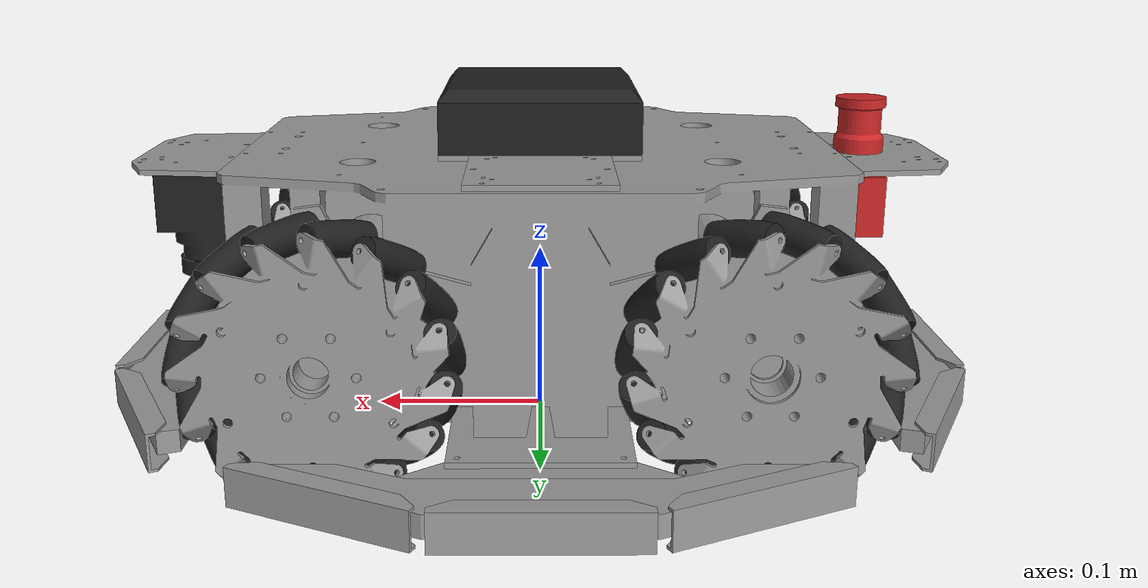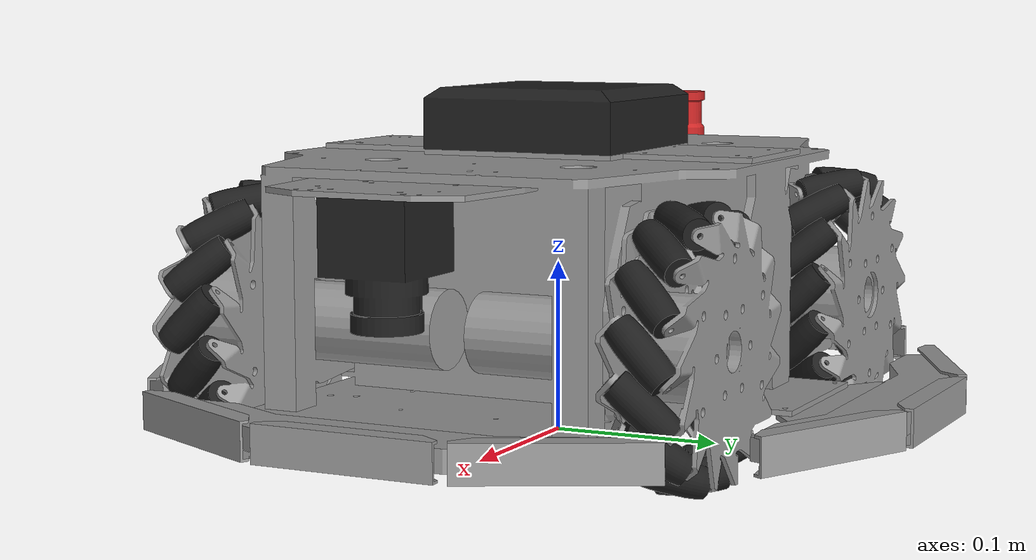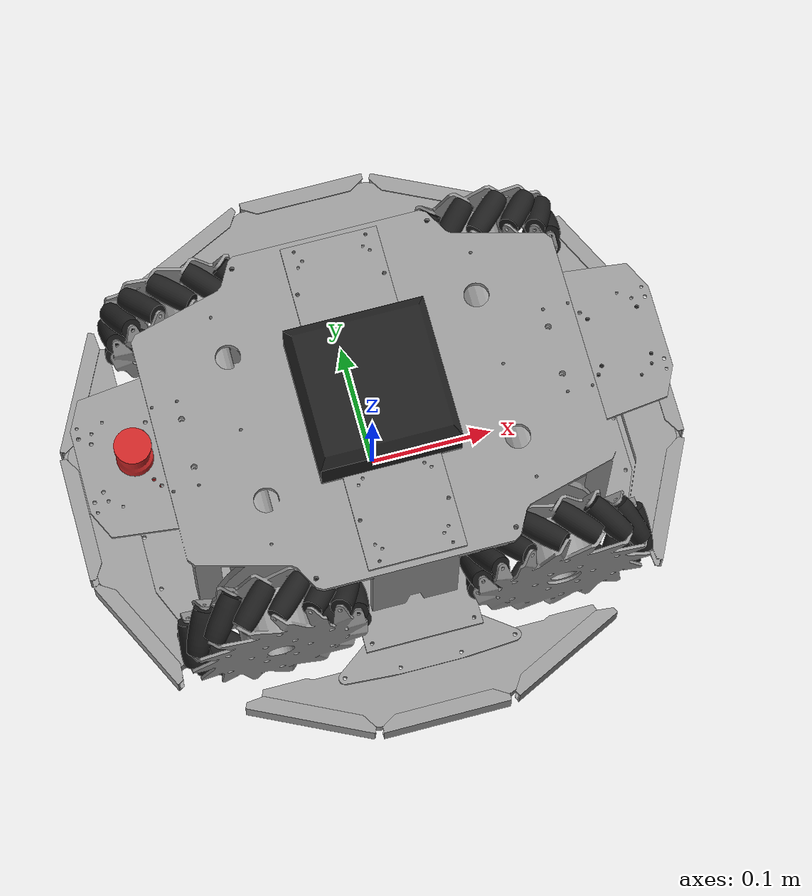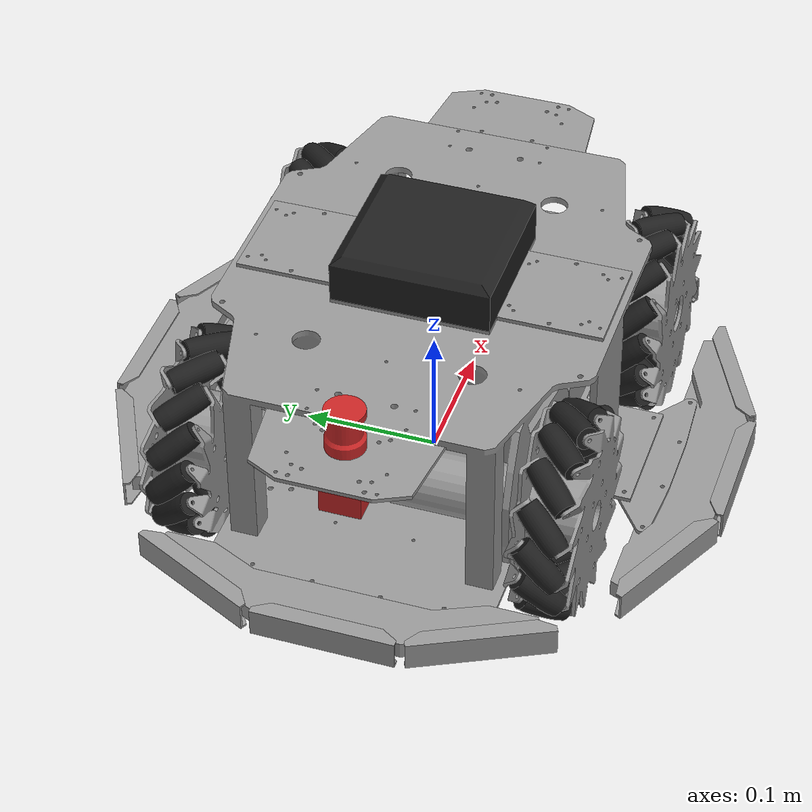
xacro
<?xml version="1.0"?>
<robot name="vmecanumrover" xmlns:xacro="http://ros.org/wiki/xacro">
  <link name="base_link"/>

  <xacro:macro name="cylinder_inertial" params="mass radius length">
	<mass value="${mass}"/>
	<inertia ixx="${((radius*radius)/4 + (length*length)/12)*mass}" ixy="0" ixz="0"
			 iyy="${((radius*radius)/4 + (length*length)/12)*mass}" iyz="0"
			 izz="${(mass*radius*radius)/2}" />
  </xacro:macro>

  <xacro:macro name="box_inertial" params="mass height width depth">
	<mass value="${mass}"/>
	<inertia ixx="${(mass*(width*width+depth*depth))/12}" ixy="0" ixz="0"
			 iyy="${(mass*(height*height+depth*depth))/12}" iyz="0"
			 izz="${(mass*(height*height+width*width))/12}" />
  </xacro:macro>

  <xacro:macro name="sus" params="prefix">
    <joint name="${prefix}_sus_joint" type="prismatic">
      <parent link="${prefix}_base_link"/>
      <child  link="${prefix}_sus_link"/>
      <limit lower="-0.02" upper="0.02" effort="100" velocity="1.0" />
      <axis xyz="0 0 1"/>
      <origin xyz="0 0 0" rpy="0 0 0"/>
      <dynamics damping="0.01"/>
    </joint>
    <transmission name="${prefix}_sus_trans">
      <type>transmission_interface/SimpleTransmission</type>
      <joint name="${prefix}_sus_joint">
          <hardwareInterface>hardware_interface/EffortJointInterface</hardwareInterface>
      </joint>
      <actuator name="${prefix}_sus_motor">
        <hardwareInterface>hardware_interface/EffortJointInterface</hardwareInterface>
        <mechanismReduction>1</mechanismReduction>
      </actuator>
    </transmission>
    <gazebo reference="${prefix}_sus_joint">
      <kp>50000</kp>
      <kd>500</kd>
    </gazebo>
    <link name="${prefix}_sus_link">
      <inertial>
        <mass value="0.010"/>
        <inertia ixx="0.00001" ixy="0.0" ixz="0.0" iyy="0.00001" iyz="0.0" izz="0.00001"/>
      </inertial>
    </link>

  </xacro:macro>

  <xacro:macro name="barrel" params="prefix num dir rot">
    <joint name="${prefix}_barrel${num}_joint" type="continuous">
      <parent link="${prefix}_motor_shaft_link"/>
      <child link="${prefix}_barrel${num}_link"/>
      <origin rpy="${pi/4*rot} 0 ${radians(dir)}" xyz="${0.0666389*cos(radians(dir))} ${0.0666389*sin(radians(dir))} 0"/>
      <axis xyz="0 0 1"/>
      <dynamics damping="0.001"  friction="0.0"/>
    </joint>
    <link name="${prefix}_barrel${num}_link">
      <visual>
        <geometry>
          <mesh filename="package://mecanumrover_samples/meshes/dae/mecanum_barrel.dae" />
        </geometry>
        <material name="black"/>
      </visual>
      <collision>
        <geometry>
          <cylinder radius="0.00956" length="0.0381" />
        </geometry>
      </collision>
      <inertial>
        <xacro:cylinder_inertial mass="0.01225" radius="0.00956" length="0.0381" />
      </inertial>

    </link>
    <gazebo reference="${prefix}_barrel${num}_link">
      <material>Gazebo/Black</material>
      <mu1 value="2.5" />
      <mu2 value="2.5" />
      <kp value="50000" />
      <kd value="100" />
    </gazebo>
  </xacro:macro>

  <xacro:macro name="barrels" params="prefix rot ">
    <xacro:barrel prefix="${prefix}"  num="0" dir="0" rot="${rot}"/>
    <xacro:barrel prefix="${prefix}"  num="1" dir="24" rot="${rot}"/>
    <xacro:barrel prefix="${prefix}"  num="2" dir="48" rot="${rot}"/>
    <xacro:barrel prefix="${prefix}"  num="3" dir="72" rot="${rot}"/>
    <xacro:barrel prefix="${prefix}"  num="4" dir="96" rot="${rot}"/>
    <xacro:barrel prefix="${prefix}"  num="5" dir="120" rot="${rot}"/>
    <xacro:barrel prefix="${prefix}"  num="6" dir="144" rot="${rot}"/>
    <xacro:barrel prefix="${prefix}"  num="7" dir="168" rot="${rot}"/>
    <xacro:barrel prefix="${prefix}"  num="8" dir="192" rot="${rot}"/>
    <xacro:barrel prefix="${prefix}"  num="9" dir="216" rot="${rot}"/>
    <xacro:barrel prefix="${prefix}"  num="10" dir="240" rot="${rot}"/>
    <xacro:barrel prefix="${prefix}"  num="11" dir="264" rot="${rot}"/>
    <xacro:barrel prefix="${prefix}"  num="12" dir="288" rot="${rot}"/>
    <xacro:barrel prefix="${prefix}"  num="13" dir="312" rot="${rot}"/>
    <xacro:barrel prefix="${prefix}"  num="14" dir="336" rot="${rot}"/>
  </xacro:macro>

  <xacro:macro name="motor" params="prefix parent mesh">
    <joint name="${prefix}_joint" type="fixed">
      <parent link="${parent}"/>
      <child  link="${prefix}_body_link"/>
    </joint>
    <link name="${prefix}_body_link">
      <visual>
        <origin rpy="0 ${radians(90)} 0" xyz="-0.06075 0 0"/>
        <geometry>
          <cylinder radius="0.02225" length="0.1215" />
        </geometry>
        <material name="gray"/>
      </visual>
      <collision>
        <origin rpy="0 ${radians(90)} 0" xyz="-0.06075 0 0"/>
        <geometry>
          <cylinder radius="0.02225" length="0.1215" />
        </geometry>
      </collision>
      <inertial>
        <xacro:cylinder_inertial mass="0.880" radius="0.02225" length="0.1215" />
      </inertial>

    </link>
    <gazebo reference="${prefix}_body_link">
      <material>Gazebo/Gray</material>
    </gazebo>

    <joint name="${prefix}_shaft_joint" type="continuous">
      <parent link="${prefix}_body_link"/>
      <child  link="${prefix}_shaft_link"/>
      <origin rpy="0 ${radians(90)} 0" xyz="0 0 0"/>
      <axis xyz="0 0 -1"/>
      <dynamics damping="0.01" friction="0.0"/>
    </joint>
    <transmission name="${prefix}_shaft_trans">
      <type>transmission_interface/SimpleTransmission</type>
      <joint name="${prefix}_shaft_joint">
        <hardwareInterface>hardware_interface/EffortJointInterface</hardwareInterface>
      </joint>
      <actuator name="${prefix}_shaft_motor">
        <hardwareInterface>hardware_interface/EffortJointInterface</hardwareInterface>
        <mechanicalReduction>1</mechanicalReduction>
      </actuator>
    </transmission>

    <link name="${prefix}_shaft_link">
      <visual>
        <geometry>
          <mesh filename="package://mecanumrover_samples/meshes/dae/${mesh}.dae" />
        </geometry>
        <material name="gray"/>
      </visual>
      <collision>
        <origin rpy="0 0 0" xyz="0 0 0"/>
        <geometry>
          <cylinder radius="0.070" length="0.04572" />
        </geometry>
      </collision>
      <inertial>
        <xacro:cylinder_inertial mass="0.43525" radius="0.048" length="0.04572" />
      </inertial>

    </link>
    <gazebo reference="${prefix}_shaft_link">
      <material>Gazebo/White</material>
      <mu1 value="0.0" />
      <mu2 value="0.0" />
    </gazebo>
  </xacro:macro>

  <xacro:macro name="omni_wheel_set_l" params="prefix parent">

    <joint name="${prefix}_base_joint" type="fixed">
      <parent link="${parent}"/>
      <child link="${prefix}_base_link"/>
      <origin rpy="0 0 0" xyz="0 0 0"/>
    </joint>
    <link name="${prefix}_base_link" >
      <inertial>
        <mass value="0.010"/>
        <inertia ixx="0.0001" ixy="0" ixz="0" iyy="0.0001" iyz="0" izz="0.0001"/>
      </inertial>
    </link>

    <xacro:sus prefix="${prefix}"/>
    <xacro:motor prefix="${prefix}_motor" parent="${prefix}_sus_link" mesh="mecanum_wheel_rev"/>
    <xacro:barrels prefix="${prefix}" rot="-1"/>

  </xacro:macro>

  <xacro:macro name="omni_wheel_set_r" params="prefix parent">

    <joint name="${prefix}_base_joint" type="fixed">
      <parent link="${parent}"/>
      <child link="${prefix}_base_link"/>
      <origin rpy="0 0 0" xyz="0 0 0"/>
    </joint>
    <link name="${prefix}_base_link" >
      <inertial>
        <mass value="0.010"/>
        <inertia ixx="0.0001" ixy="0" ixz="0" iyy="0.0001" iyz="0" izz="0.0001"/>
      </inertial>
    </link>

    <xacro:sus prefix="${prefix}"/>
    <xacro:motor prefix="${prefix}_motor" parent="${prefix}_sus_link" mesh="mecanum_wheel"/>
    <xacro:barrels prefix="${prefix}" rot="1"/>

  </xacro:macro>

  <joint name="body_joint" type="fixed">
    <parent link="base_link"/>
    <child  link="body_link"/>
    <origin xyz="0 0 0.0" rpy="0 0 0"/>
  </joint>
  <link name="body_link">
    <visual>
      <geometry>
          <mesh filename="package://mecanumrover_samples/meshes/dae/mecanum_body.dae" />
      </geometry>
      <material name="gray"/>
    </visual>
    <collision>
      <geometry>
          <mesh filename="package://mecanumrover_samples/meshes/stl/mecanum_body.stl" />
      </geometry>
    </collision>
    <inertial>
        <xacro:box_inertial mass="14.004" height="0.135" width="0.28" depth="0.34" />
    </inertial>

  </link>
  <gazebo reference="body_link">
    <material>Gazebo/White</material>
  </gazebo>

  <joint name="wheel0_attach_joint" type="fixed">
    <parent link="base_link"/>
    <child  link="wheel0_attach_link"/>
    <origin xyz="0.115 0.132 0.075" rpy="0 0 ${radians(90)}"/>
  </joint>
  <link name="wheel0_attach_link" />
  <xacro:omni_wheel_set_l prefix="wheel0" parent="wheel0_attach_link" />

  <joint name="wheel1_attach_joint" type="fixed">
    <parent link="base_link"/>
    <child  link="wheel1_attach_link"/>
    <origin xyz="0.115 -0.132 0.075" rpy="0 0 ${radians(-90)}"/>
  </joint>
  <link name="wheel1_attach_link" />
  <xacro:omni_wheel_set_r prefix="wheel1" parent="wheel1_attach_link" />

  <joint name="wheel2_attach_joint" type="fixed">
    <parent link="base_link"/>
    <child  link="wheel2_attach_link"/>
    <origin xyz="-0.115 0.132 0.075" rpy="0 0 ${radians(90)}"/>
  </joint>
  <link name="wheel2_attach_link" />
  <xacro:omni_wheel_set_r prefix="wheel2" parent="wheel2_attach_link" />

  <joint name="wheel3_attach_joint" type="fixed">
    <parent link="base_link"/>
    <child  link="wheel3_attach_link"/>
    <origin xyz="-0.115 -0.132 0.075" rpy="0 0 ${radians(-90)}"/>
  </joint>
  <link name="wheel3_attach_link" />
  <xacro:omni_wheel_set_l prefix="wheel3" parent="wheel3_attach_link" />

  <!-- option parts -->
  <xacro:macro name="optionattachboard" params="prefix xyz z_dir">

  <joint name="board_${prefix}_joint" type="fixed">
    <parent link="body_link"/>
    <child  link="board_${prefix}_link"/>
    <origin xyz="${xyz}" rpy="0 0 ${radians(z_dir)}"/>
  </joint>
  <link name="board_${prefix}_link">
    <visual>
      <geometry>
          <mesh filename="package://mecanumrover_samples/meshes/dae/mecanum_optionattachboard.dae" />
      </geometry>
      <material name="gray"/>
    </visual>
    <collision>
      <geometry>
          <mesh filename="package://mecanumrover_samples/meshes/stl/mecanum_optionattachboard.stl" />
      </geometry>
    </collision>
    <inertial>
        <xacro:box_inertial mass="0.0780" height="0.003" width="0.12" depth="0.0885" />
    </inertial>

  </link>
  <gazebo reference="board_${prefix}_link">
    <material>Gazebo/White</material>
  </gazebo>
  </xacro:macro>

  <xacro:macro name="bumper" params="prefix num xyz z_dir">

  <joint name="bumper_${prefix}_${num}_joint" type="prismatic">
    <parent link="bumper_baseboard_${prefix}_link"/>
    <child  link="bumper_${prefix}_${num}_link"/>
    <origin xyz="${xyz}" rpy="0 0 ${radians(z_dir)}"/>

    <limit lower="0.0" upper="0.005" effort="1" velocity="1.0" />
    <axis xyz="0 1 0"/>
    <origin xyz="0 0 0" rpy="0 0 0"/>
    <dynamics damping="0.01"/>

  </joint>
  <transmission name="bumper_${prefix}_${num}_trans">
    <type>transmission_interface/SimpleTransmission</type>
    <joint name="bumper_${prefix}_${num}_joint">
        <hardwareInterface>hardware_interface/EffortJointInterface</hardwareInterface>
    </joint>
    <actuator name="bumper_${prefix}_${num}_motor">
      <hardwareInterface>hardware_interface/EffortJointInterface</hardwareInterface>
      <mechanismReduction>1</mechanismReduction>
    </actuator>
  </transmission>

  <link name="bumper_${prefix}_${num}_link">
    <visual>
      <geometry>
          <mesh filename="package://mecanumrover_samples/meshes/dae/mecanum_bumper.dae" />
      </geometry>
      <material name="gray"/>
    </visual>
    <collision>
      <geometry>
          <mesh filename="package://mecanumrover_samples/meshes/stl/mecanum_bumper.stl" />
      </geometry>
    </collision>
    <inertial>
        <xacro:box_inertial mass="0.016" height="0.02096" width="0.104" depth="0.01251" />
    </inertial>

  </link>
  <gazebo reference="bumper_${prefix}_${num}_link">
    <material>Gazebo/White</material>
    <kp value="10000" />
    <kd value="100" />
  </gazebo>
  </xacro:macro>

  <xacro:macro name="bumperbaseboard" params="prefix parent xyz z_dir">

  <joint name="bumper_baseboard_${prefix}_joint" type="fixed">
    <parent link="${parent}"/>
    <child  link="bumper_baseboard_${prefix}_link"/>
    <origin xyz="${xyz}" rpy="0 0 ${radians(z_dir)}"/>
  </joint>
  <link name="bumper_baseboard_${prefix}_link">
    <visual>
      <geometry>
          <mesh filename="package://mecanumrover_samples/meshes/dae/mecanum_bumper_plate.dae" />
      </geometry>
      <material name="gray"/>
    </visual>
    <collision>
      <geometry>
          <mesh filename="package://mecanumrover_samples/meshes/stl/mecanum_bumper_plate.stl" />
      </geometry>
    </collision>
    <inertial>
        <xacro:box_inertial mass="0.195" height="0.0125" width="0.053" depth="0.26" />
    </inertial>

  </link>
  <gazebo reference="bumper_baseboard_${prefix}_link">
    <material>Gazebo/White</material>
  </gazebo>

      <xacro:bumper prefix="${prefix}" num="0" xyz="0.10521 -0.024711 -0.00325" z_dir="26" />
      <xacro:bumper prefix="${prefix}" num="1" xyz="0 -0.049 -0.00325" z_dir="0" />
      <xacro:bumper prefix="${prefix}" num="2" xyz="-0.10521 -0.024711 -0.00325" z_dir="-26" />

  </xacro:macro>

  <xacro:macro name="sidebumperattachboard" params="prefix xyz z_dir">

  <joint name="board_${prefix}_joint" type="fixed">
    <parent link="body_link"/>
    <child  link="bumper_board_${prefix}_link"/>
    <origin xyz="${xyz}" rpy="0 0 ${radians(z_dir)}"/>
  </joint>
  <link name="bumper_board_${prefix}_link">
    <visual>
      <geometry>
          <mesh filename="package://mecanumrover_samples/meshes/dae/mecanum_bumper_sidelink.dae" />
      </geometry>
      <material name="gray"/>
    </visual>
    <collision>
      <geometry>
          <mesh filename="package://mecanumrover_samples/meshes/stl/mecanum_bumper_sidelink.stl" />
      </geometry>
    </collision>
    <inertial>
        <xacro:box_inertial mass="0.038" height="0.003" width="0.03371" depth="0.3262" />
    </inertial>

  </link>
  <gazebo reference="bumper_board_${prefix}_link">
    <material>Gazebo/White</material>
  </gazebo>

  <xacro:bumperbaseboard prefix="${prefix}" parent="bumper_board_${prefix}_link" xyz="0.0 -0.024 0.005" z_dir="0"/>

  </xacro:macro>

  <!-- Bumper  -->
  <!-- right -->
  <xacro:sidebumperattachboard prefix="right" xyz="0.0 0.157 0.0285" z_dir="180"/>
  <!-- left -->
  <xacro:sidebumperattachboard prefix="left" xyz="0.0 -0.157 0.0285" z_dir="0"/>

  <!-- front -->
  <xacro:bumperbaseboard prefix="front" parent="body_link" xyz="0.196 0 0.0365" z_dir="90"/>
  <!-- back -->
  <xacro:bumperbaseboard prefix="back" parent="body_link" xyz="-0.196 0 0.0365" z_dir="-90"/>

  <!-- base attachment(LiDAR,emergency button,wyreless charge) board(front) -->
  <!--  upper side  -->
  <!--  lower side  -->
  <xacro:optionattachboard prefix="front" xyz="0.157 0 0.1585" z_dir="0" />

  <!-- base attachment(LiDAR,emergency button,wyreless charge) board(back) -->
  <!--  upper side  -->
  <!--  lower side  -->
  <xacro:optionattachboard prefix="back" xyz="-0.157 0 0.1585" z_dir="180" />

  <!-- LiDAR  -->
  <joint name="lidar_joint" type="fixed">
    <parent link="board_front_link"/>
    <child  link="lidar_link"/>
  <!-- attach upper side -->
  <!-- attach lower side -->
    <origin xyz="0.042 0 -0.0570" rpy="${radians(180)} 0 0"/>
  </joint>
  <link name="lidar_link">
    <visual>
      <geometry>
          <mesh filename="package://mecanumrover_samples/meshes/dae/mecanum_lidar.dae" />
      </geometry>
      <material name="black"/>
    </visual>
    <collision>
      <geometry>
          <mesh filename="package://mecanumrover_samples/meshes/stl/mecanum_lidar.stl" />
      </geometry>
    </collision>
    <inertial>
        <xacro:box_inertial mass="0.160" height="0.07" width="0.05" depth="0.05" />
    </inertial>

  </link>
  <gazebo reference="lidar_link">
    <material>Gazebo/Black</material>
    <sensor type="ray" name="lidar_sensor">
      <pose>0 0 0 0 0 0</pose>
      <visualize>true</visualize>
      <update_rate>40</update_rate>
      <ray>
        <scan>
          <horizontal>
            <samples>1000</samples>
            <resolution>1</resolution>
            <min_angle>-1.57</min_angle>
            <max_angle>1.57</max_angle>
          </horizontal>
        </scan>
        <range>
          <min>0.06</min>
          <max>4.0</max>
        <resolution>0.001</resolution>
        </range>
        <noise>
          <type>gaussian</type>
          <mean>0.0</mean>
          <stddev>0.03</stddev>
        </noise>
      </ray>
      <plugin name="gazebo_ros_lrf_controller" filename="libgazebo_ros_laser.so">
        <topicName>/scan</topicName>
        <frameName>lidar_link</frameName>
      </plugin>
    </sensor>
  </gazebo>

  <!-- emergency button  -->
  <joint name="button_joint" type="fixed">
    <parent link="board_back_link"/>
    <child  link="button_link"/>
    <origin xyz="0.032 0 -0.0072" rpy="0 0 0"/>
  </joint>
  <link name="button_link">
    <visual>
      <geometry>
          <mesh filename="package://mecanumrover_samples/meshes/dae/mecanum_button.dae" />
      </geometry>
      <material name="red"/>
    </visual>
    <collision>
      <geometry>
          <mesh filename="package://mecanumrover_samples/meshes/stl/mecanum_button.stl" />
      </geometry>
    </collision>
    <inertial>
        <xacro:box_inertial mass="0.48" height="0.3026" width="0.03" depth="0.0294" />
    </inertial>

  </link>
  <gazebo reference="button_link">
    <material>Gazebo/Red</material>
  </gazebo>

  <!-- Wyreless charger  -->
  <!-- attachiment  -->

  <!-- wyreless charger  -->

  <!-- NUC PC  -->
  <!-- option attach board  -->
  <joint name="board_center_joint" type="fixed">
    <parent link="body_link"/>
    <child  link="board_center_link"/>
    <origin xyz="0.0 0 0.1665" rpy="0 0 0"/>
  </joint>
  <link name="board_center_link">
    <visual>
      <geometry>
          <mesh filename="package://mecanumrover_samples/meshes/dae/mecanum_nuc_board.dae" />
      </geometry>
      <material name="gray"/>
    </visual>
    <collision>
      <geometry>
          <mesh filename="package://mecanumrover_samples/meshes/stl/mecanum_nuc_board.stl" />
      </geometry>
    </collision>
    <inertial>
        <xacro:box_inertial mass="0.16" height="0.003" width="0.27" depth="0.095" />
    </inertial>

  </link>
  <gazebo reference="board_center_link">
    <material>Gazebo/White</material>
  </gazebo>

  <!-- NUC  -->
  <joint name="nuc_joint" type="fixed">
    <parent link="board_center_link"/>
    <child  link="nuc_link"/>
    <origin xyz="0.0 0 0.019" rpy="0 0 0"/>
  </joint>
  <link name="nuc_link">
    <visual>
      <geometry>
          <mesh filename="package://mecanumrover_samples/meshes/dae/mecanum_nuc.dae" />
      </geometry>
      <material name="black"/>
    </visual>
    <collision>
      <geometry>
          <mesh filename="package://mecanumrover_samples/meshes/stl/mecanum_nuc.stl" />
      </geometry>
    </collision>
    <inertial>
        <xacro:box_inertial mass="1.18" height="0.0352" width="0.117" depth="0.112" />
    </inertial>

  </link>
  <gazebo reference="nuc_link">
    <material>Gazebo/Black</material>
  </gazebo>

  <gazebo>
    <plugin name="gazebo_ros_control" filename="libgazebo_ros_control.so">
      <robotNamespace>/vmecanumrover</robotNamespace>
      <robotSimType>gazebo_ros_control/DefaultRobotHWSim</robotSimType>
      <legacyModeNS>true</legacyModeNS>
      <odometryFrame>map</odometryFrame>
    </plugin>
  </gazebo>

</robot>
